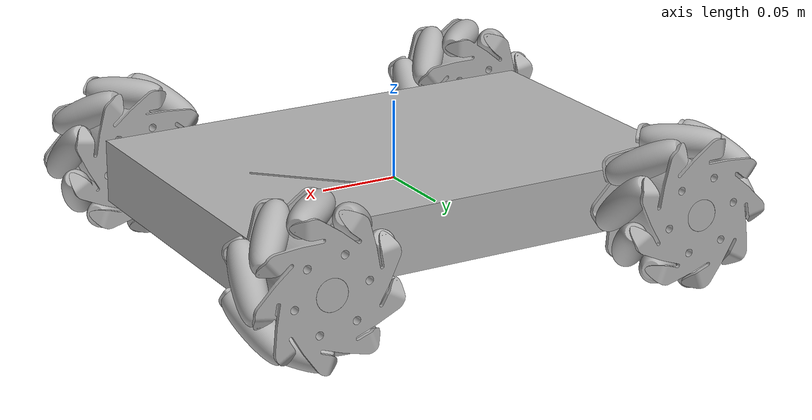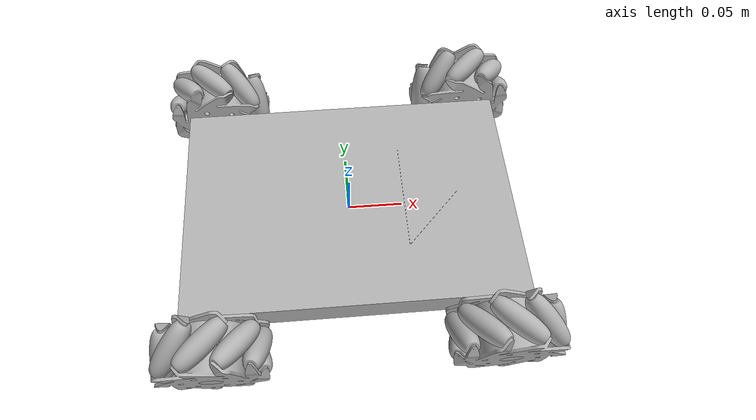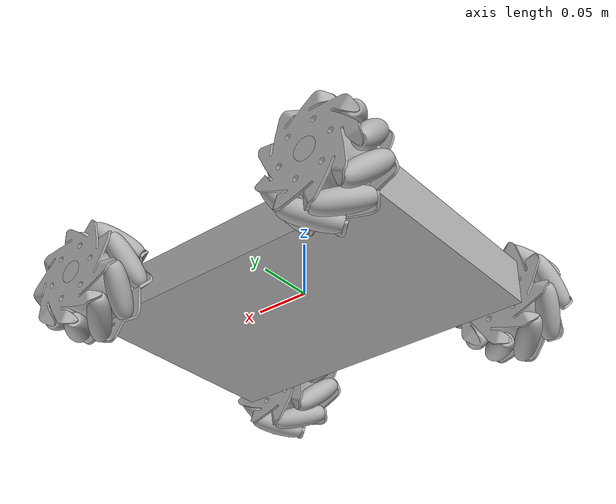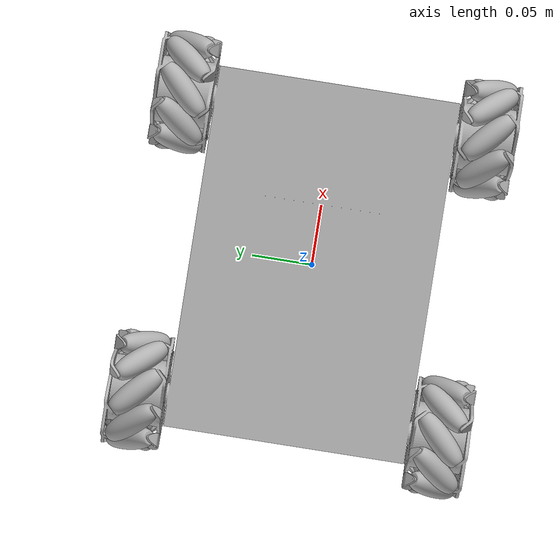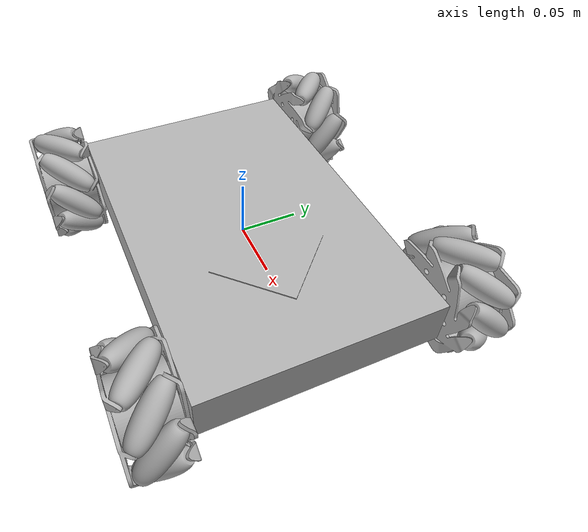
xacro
<?xml version="1.0" ?>
<robot name="mec_rob" xmlns:xacro="http://www.ros.org/wiki/xacro">

<xacro:include filename="$(find mecanum_in_gazebo)/urdf/materials.xacro" />
<xacro:include filename="$(find mecanum_in_gazebo)/urdf/mec_rob.trans" />
<xacro:include filename="$(find mecanum_in_gazebo)/urdf/mec_rob.gazebo" />
<link name="base_link">
  <inertial>
    <origin xyz="6.760415092149816e-05 -2.9513096198865094e-17 2.0788276408363705e-05" rpy="0 0 0"/>
    <mass value="19.3528550466136"/>
    <inertia ixx="0.07315" iyy="0.151641" izz="0.219727" ixy="-0.0" iyz="0.0" ixz="-2.7e-05"/>
  </inertial>
  <visual>
    <origin xyz="0 0 0" rpy="0 0 0"/>
    <geometry>
      <mesh filename="package://mecanum_in_gazebo/meshes/base_link.stl" scale="0.001 0.001 0.001"/>
    </geometry>
    <material name="silver"/>
  </visual>
  <collision>
    <origin xyz="0 0 0" rpy="0 0 0"/>
    <geometry>
      <mesh filename="package://mecanum_in_gazebo/meshes/base_link.stl" scale="0.001 0.001 0.001"/>
    </geometry>
  </collision>
</link>

<link name="wheel_frame_FL_1">
  <inertial>
    <origin xyz="-2.1897287448918723e-05 -0.023738528231967565 3.1378817485983033e-06" rpy="0 0 0"/>
    <mass value="0.30282113324994747"/>
    <inertia ixx="0.00016" iyy="0.000181" izz="0.000158" ixy="-1e-06" iyz="0.0" ixz="-0.0"/>
  </inertial>
  <visual>
    <origin xyz="-0.125 -0.15 -0.0" rpy="0 0 0"/>
    <geometry>
      <mesh filename="package://mecanum_in_gazebo/meshes/wheel_frame_FL_1.stl" scale="0.001 0.001 0.001"/>
    </geometry>
    <material name="silver"/>
  </visual>
  <collision>
    <origin xyz="-0.125 -0.15 -0.0" rpy="0 0 0"/>
    <geometry>
      <mesh filename="package://mecanum_in_gazebo/meshes/wheel_frame_FL_1.stl" scale="0.001 0.001 0.001"/>
    </geometry>
  </collision>
</link>

<link name="roller_14_1">
  <inertial>
    <origin xyz="-0.01730009422242043 -0.01664777121912278 -2.6367796834847468e-15" rpy="0 0 0"/>
    <mass value="0.014233736590697255"/>
    <inertia ixx="2e-06" iyy="2e-06" izz="2e-06" ixy="-1e-06" iyz="-0.0" ixz="-0.0"/>
  </inertial>
  <visual>
    <origin xyz="-0.142316 -0.142881 -0.04" rpy="0 0 0"/>
    <geometry>
      <mesh filename="package://mecanum_in_gazebo/meshes/roller_14_1.stl" scale="0.001 0.001 0.001"/>
    </geometry>
    <material name="silver"/>
  </visual>
  <collision>
    <origin xyz="-0.142316 -0.142881 -0.04" rpy="0 0 0"/>
    <geometry>
      <mesh filename="package://mecanum_in_gazebo/meshes/roller_14_1.stl" scale="0.001 0.001 0.001"/>
    </geometry>
  </collision>
</link>

<link name="roller_16_1">
  <inertial>
    <origin xyz="-0.01325231160541368 -0.01664777187914801 0.011119554128877593" rpy="0 0 0"/>
    <mass value="0.01423373659069693"/>
    <inertia ixx="2e-06" iyy="2e-06" izz="2e-06" ixy="-1e-06" iyz="1e-06" ixz="0.0"/>
  </inertial>
  <visual>
    <origin xyz="-0.163976 -0.142881 -0.019512" rpy="0 0 0"/>
    <geometry>
      <mesh filename="package://mecanum_in_gazebo/meshes/roller_16_1.stl" scale="0.001 0.001 0.001"/>
    </geometry>
    <material name="silver"/>
  </visual>
  <collision>
    <origin xyz="-0.163976 -0.142881 -0.019512" rpy="0 0 0"/>
    <geometry>
      <mesh filename="package://mecanum_in_gazebo/meshes/roller_16_1.stl" scale="0.001 0.001 0.001"/>
    </geometry>
  </collision>
</link>

<link name="roller_13_1">
  <inertial>
    <origin xyz="-0.0030044941161637972 -0.016647462795977563 0.01703683072301009" rpy="0 0 0"/>
    <mass value="0.014233736590696914"/>
    <inertia ixx="2e-06" iyy="2e-06" izz="2e-06" ixy="-0.0" iyz="1e-06" ixz="0.0"/>
  </inertial>
  <visual>
    <origin xyz="-0.167394 -0.142914 0.010075" rpy="0 0 0"/>
    <geometry>
      <mesh filename="package://mecanum_in_gazebo/meshes/roller_13_1.stl" scale="0.001 0.001 0.001"/>
    </geometry>
    <material name="silver"/>
  </visual>
  <collision>
    <origin xyz="-0.167394 -0.142914 0.010075" rpy="0 0 0"/>
    <geometry>
      <mesh filename="package://mecanum_in_gazebo/meshes/roller_13_1.stl" scale="0.001 0.001 0.001"/>
    </geometry>
  </collision>
</link>

<link name="roller_12_1">
  <inertial>
    <origin xyz="0.008650090286065698 -0.016647462135951696 0.01498198481151108" rpy="0 0 0"/>
    <mass value="0.01423373659069688"/>
    <inertia ixx="2e-06" iyy="2e-06" izz="2e-06" ixy="0.0" iyz="1e-06" ixz="-0.0"/>
  </inertial>
  <visual>
    <origin xyz="-0.150999 -0.142914 0.034968" rpy="0 0 0"/>
    <geometry>
      <mesh filename="package://mecanum_in_gazebo/meshes/roller_12_1.stl" scale="0.001 0.001 0.001"/>
    </geometry>
    <material name="silver"/>
  </visual>
  <collision>
    <origin xyz="-0.150999 -0.142914 0.034968" rpy="0 0 0"/>
    <geometry>
      <mesh filename="package://mecanum_in_gazebo/meshes/roller_12_1.stl" scale="0.001 0.001 0.001"/>
    </geometry>
  </collision>
</link>

<link name="roller_15_1">
  <inertial>
    <origin xyz="0.016255980142600823 -0.016647462135952473 0.005916818201972901" rpy="0 0 0"/>
    <mass value="0.014233736590697089"/>
    <inertia ixx="2e-06" iyy="2e-06" izz="2e-06" ixy="1e-06" iyz="0.0" ixz="-0.0"/>
  </inertial>
  <visual>
    <origin xyz="-0.12244 -0.142914 0.043499" rpy="0 0 0"/>
    <geometry>
      <mesh filename="package://mecanum_in_gazebo/meshes/roller_15_1.stl" scale="0.001 0.001 0.001"/>
    </geometry>
    <material name="silver"/>
  </visual>
  <collision>
    <origin xyz="-0.12244 -0.142914 0.043499" rpy="0 0 0"/>
    <geometry>
      <mesh filename="package://mecanum_in_gazebo/meshes/roller_15_1.stl" scale="0.001 0.001 0.001"/>
    </geometry>
  </collision>
</link>

<link name="roller_17_1">
  <inertial>
    <origin xyz="0.01625636867654784 -0.016647462135950142 -0.005917227864846754" rpy="0 0 0"/>
    <mass value="0.014233736590697006"/>
    <inertia ixx="2e-06" iyy="2e-06" izz="2e-06" ixy="1e-06" iyz="-0.0" ixz="0.0"/>
  </inertial>
  <visual>
    <origin xyz="-0.095078 -0.142914 0.031676" rpy="0 0 0"/>
    <geometry>
      <mesh filename="package://mecanum_in_gazebo/meshes/roller_17_1.stl" scale="0.001 0.001 0.001"/>
    </geometry>
    <material name="silver"/>
  </visual>
  <collision>
    <origin xyz="-0.095078 -0.142914 0.031676" rpy="0 0 0"/>
    <geometry>
      <mesh filename="package://mecanum_in_gazebo/meshes/roller_17_1.stl" scale="0.001 0.001 0.001"/>
    </geometry>
  </collision>
</link>

<link name="roller_18_1">
  <inertial>
    <origin xyz="0.008650058329703877 -0.016647462793830475 -0.014981985403539554" rpy="0 0 0"/>
    <mass value="0.01423373659069696"/>
    <inertia ixx="2e-06" iyy="2e-06" izz="2e-06" ixy="0.0" iyz="-1e-06" ixz="0.0"/>
  </inertial>
  <visual>
    <origin xyz="-0.081717 -0.142914 0.005032" rpy="0 0 0"/>
    <geometry>
      <mesh filename="package://mecanum_in_gazebo/meshes/roller_18_1.stl" scale="0.001 0.001 0.001"/>
    </geometry>
    <material name="silver"/>
  </visual>
  <collision>
    <origin xyz="-0.081717 -0.142914 0.005032" rpy="0 0 0"/>
    <geometry>
      <mesh filename="package://mecanum_in_gazebo/meshes/roller_18_1.stl" scale="0.001 0.001 0.001"/>
    </geometry>
  </collision>
</link>

<link name="roller_10_1">
  <inertial>
    <origin xyz="-0.0030041143571402362 -0.016647462795977036 -0.017036976509655844" rpy="0 0 0"/>
    <mass value="0.014233736590696993"/>
    <inertia ixx="2e-06" iyy="2e-06" izz="2e-06" ixy="-0.0" iyz="-1e-06" ixz="-0.0"/>
  </inertial>
  <visual>
    <origin xyz="-0.088609 -0.142914 -0.023967" rpy="0 0 0"/>
    <geometry>
      <mesh filename="package://mecanum_in_gazebo/meshes/roller_10_1.stl" scale="0.001 0.001 0.001"/>
    </geometry>
    <material name="silver"/>
  </visual>
  <collision>
    <origin xyz="-0.088609 -0.142914 -0.023967" rpy="0 0 0"/>
    <geometry>
      <mesh filename="package://mecanum_in_gazebo/meshes/roller_10_1.stl" scale="0.001 0.001 0.001"/>
    </geometry>
  </collision>
</link>

<link name="roller_11_1">
  <inertial>
    <origin xyz="-0.013251875204888214 -0.016647462795978424 -0.011119602623583382" rpy="0 0 0"/>
    <mass value="0.014233736590697477"/>
    <inertia ixx="2e-06" iyy="2e-06" izz="2e-06" ixy="-1e-06" iyz="-1e-06" ixz="-0.0"/>
  </inertial>
  <visual>
    <origin xyz="-0.112528 -0.142914 -0.041751" rpy="0 0 0"/>
    <geometry>
      <mesh filename="package://mecanum_in_gazebo/meshes/roller_11_1.stl" scale="0.001 0.001 0.001"/>
    </geometry>
    <material name="silver"/>
  </visual>
  <collision>
    <origin xyz="-0.112528 -0.142914 -0.041751" rpy="0 0 0"/>
    <geometry>
      <mesh filename="package://mecanum_in_gazebo/meshes/roller_11_1.stl" scale="0.001 0.001 0.001"/>
    </geometry>
  </collision>
</link>

<link name="wheel_frame_FR_1">
  <inertial>
    <origin xyz="-2.1897287449737513e-05 0.02375019110552612 3.1378817487137666e-06" rpy="0 0 0"/>
    <mass value="0.30282113324994836"/>
    <inertia ixx="0.000161" iyy="0.000181" izz="0.000159" ixy="-0.0" iyz="0.0" ixz="-0.0"/>
  </inertial>
  <visual>
    <origin xyz="-0.125 0.15 -0.0" rpy="0 0 0"/>
    <geometry>
      <mesh filename="package://mecanum_in_gazebo/meshes/wheel_frame_FR_1.stl" scale="0.001 0.001 0.001"/>
    </geometry>
    <material name="silver"/>
  </visual>
  <collision>
    <origin xyz="-0.125 0.15 -0.0" rpy="0 0 0"/>
    <geometry>
      <mesh filename="package://mecanum_in_gazebo/meshes/wheel_frame_FR_1.stl" scale="0.001 0.001 0.001"/>
    </geometry>
  </collision>
</link>

<link name="roller_7_1">
  <inertial>
    <origin xyz="0.017300094908289848 -0.01664777187914701 -1.2073675392798577e-15" rpy="0 0 0"/>
    <mass value="0.014233736590697038"/>
    <inertia ixx="2e-06" iyy="2e-06" izz="2e-06" ixy="1e-06" iyz="-0.0" ixz="-0.0"/>
  </inertial>
  <visual>
    <origin xyz="-0.107684 0.109619 -0.04" rpy="0 0 0"/>
    <geometry>
      <mesh filename="package://mecanum_in_gazebo/meshes/roller_7_1.stl" scale="0.001 0.001 0.001"/>
    </geometry>
    <material name="silver"/>
  </visual>
  <collision>
    <origin xyz="-0.107684 0.109619 -0.04" rpy="0 0 0"/>
    <geometry>
      <mesh filename="package://mecanum_in_gazebo/meshes/roller_7_1.stl" scale="0.001 0.001 0.001"/>
    </geometry>
  </collision>
</link>

<link name="roller_5_1">
  <inertial>
    <origin xyz="0.013252319854933331 -0.016647771219124002 -0.011119998238488766" rpy="0 0 0"/>
    <mass value="0.01423373659069685"/>
    <inertia ixx="2e-06" iyy="2e-06" izz="2e-06" ixy="1e-06" iyz="-1e-06" ixz="0.0"/>
  </inertial>
  <visual>
    <origin xyz="-0.137447 0.109619 -0.041772" rpy="0 0 0"/>
    <geometry>
      <mesh filename="package://mecanum_in_gazebo/meshes/roller_5_1.stl" scale="0.001 0.001 0.001"/>
    </geometry>
    <material name="silver"/>
  </visual>
  <collision>
    <origin xyz="-0.137447 0.109619 -0.041772" rpy="0 0 0"/>
    <geometry>
      <mesh filename="package://mecanum_in_gazebo/meshes/roller_5_1.stl" scale="0.001 0.001 0.001"/>
    </geometry>
  </collision>
</link>

<link name="roller_3_1">
  <inertial>
    <origin xyz="0.00300454811119516 -0.01664777121912328 -0.017036408760246494" rpy="0 0 0"/>
    <mass value="0.014233736590696551"/>
    <inertia ixx="2e-06" iyy="2e-06" izz="2e-06" ixy="0.0" iyz="-1e-06" ixz="0.0"/>
  </inertial>
  <visual>
    <origin xyz="-0.161385 0.109619 -0.023998" rpy="0 0 0"/>
    <geometry>
      <mesh filename="package://mecanum_in_gazebo/meshes/roller_3_1.stl" scale="0.001 0.001 0.001"/>
    </geometry>
    <material name="silver"/>
  </visual>
  <collision>
    <origin xyz="-0.161385 0.109619 -0.023998" rpy="0 0 0"/>
    <geometry>
      <mesh filename="package://mecanum_in_gazebo/meshes/roller_3_1.stl" scale="0.001 0.001 0.001"/>
    </geometry>
  </collision>
</link>

<link name="roller_6_1">
  <inertial>
    <origin xyz="-0.008650030959834937 -0.016647771219122087 -0.0149822251925512" rpy="0 0 0"/>
    <mass value="0.014233736590697"/>
    <inertia ixx="2e-06" iyy="2e-06" izz="2e-06" ixy="-0.0" iyz="-1e-06" ixz="-0.0"/>
  </inertial>
  <visual>
    <origin xyz="-0.168299 0.109619 0.005004" rpy="0 0 0"/>
    <geometry>
      <mesh filename="package://mecanum_in_gazebo/meshes/roller_6_1.stl" scale="0.001 0.001 0.001"/>
    </geometry>
    <material name="silver"/>
  </visual>
  <collision>
    <origin xyz="-0.168299 0.109619 0.005004" rpy="0 0 0"/>
    <geometry>
      <mesh filename="package://mecanum_in_gazebo/meshes/roller_6_1.stl" scale="0.001 0.001 0.001"/>
    </geometry>
  </collision>
</link>

<link name="roller_8_1">
  <inertial>
    <origin xyz="-0.01625624772515452 -0.016647771219123614 -0.005917264735106481" rpy="0 0 0"/>
    <mass value="0.01423373659069701"/>
    <inertia ixx="2e-06" iyy="2e-06" izz="2e-06" ixy="-1e-06" iyz="-0.0" ixz="-0.0"/>
  </inertial>
  <visual>
    <origin xyz="-0.154952 0.109619 0.031665" rpy="0 0 0"/>
    <geometry>
      <mesh filename="package://mecanum_in_gazebo/meshes/roller_8_1.stl" scale="0.001 0.001 0.001"/>
    </geometry>
    <material name="silver"/>
  </visual>
  <collision>
    <origin xyz="-0.154952 0.109619 0.031665" rpy="0 0 0"/>
    <geometry>
      <mesh filename="package://mecanum_in_gazebo/meshes/roller_8_1.stl" scale="0.001 0.001 0.001"/>
    </geometry>
  </collision>
</link>

<link name="roller_9_1">
  <inertial>
    <origin xyz="-0.01625685983158369 -0.01664777188086597 0.005916855307413364" rpy="0 0 0"/>
    <mass value="0.014233736590696988"/>
    <inertia ixx="2e-06" iyy="2e-06" izz="2e-06" ixy="-1e-06" iyz="0.0" ixz="0.0"/>
  </inertial>
  <visual>
    <origin xyz="-0.127591 0.109619 0.04351" rpy="0 0 0"/>
    <geometry>
      <mesh filename="package://mecanum_in_gazebo/meshes/roller_9_1.stl" scale="0.001 0.001 0.001"/>
    </geometry>
    <material name="silver"/>
  </visual>
  <collision>
    <origin xyz="-0.127591 0.109619 0.04351" rpy="0 0 0"/>
    <geometry>
      <mesh filename="package://mecanum_in_gazebo/meshes/roller_9_1.stl" scale="0.001 0.001 0.001"/>
    </geometry>
  </collision>
</link>

<link name="roller_4_1">
  <inertial>
    <origin xyz="-0.008650063605525643 -0.016647771879150397 0.014982225786529486" rpy="0 0 0"/>
    <mass value="0.01423373659069714"/>
    <inertia ixx="2e-06" iyy="2e-06" izz="2e-06" ixy="-0.0" iyz="1e-06" ixz="0.0"/>
  </inertial>
  <visual>
    <origin xyz="-0.099017 0.109619 0.034996" rpy="0 0 0"/>
    <geometry>
      <mesh filename="package://mecanum_in_gazebo/meshes/roller_4_1.stl" scale="0.001 0.001 0.001"/>
    </geometry>
    <material name="silver"/>
  </visual>
  <collision>
    <origin xyz="-0.099017 0.109619 0.034996" rpy="0 0 0"/>
    <geometry>
      <mesh filename="package://mecanum_in_gazebo/meshes/roller_4_1.stl" scale="0.001 0.001 0.001"/>
    </geometry>
  </collision>
</link>

<link name="roller_1_1">
  <inertial>
    <origin xyz="0.003003927989318908 -0.01664777187914948 0.017037263649050942" rpy="0 0 0"/>
    <mass value="0.014233736590697087"/>
    <inertia ixx="2e-06" iyy="2e-06" izz="2e-06" ixy="0.0" iyz="1e-06" ixz="-0.0"/>
  </inertial>
  <visual>
    <origin xyz="-0.082601 0.109619 0.010107" rpy="0 0 0"/>
    <geometry>
      <mesh filename="package://mecanum_in_gazebo/meshes/roller_1_1.stl" scale="0.001 0.001 0.001"/>
    </geometry>
    <material name="silver"/>
  </visual>
  <collision>
    <origin xyz="-0.082601 0.109619 0.010107" rpy="0 0 0"/>
    <geometry>
      <mesh filename="package://mecanum_in_gazebo/meshes/roller_1_1.stl" scale="0.001 0.001 0.001"/>
    </geometry>
  </collision>
</link>

<link name="roller_2_1">
  <inertial>
    <origin xyz="0.013252311605417427 -0.016647771879147594 0.011119554128875348" rpy="0 0 0"/>
    <mass value="0.014233736590697151"/>
    <inertia ixx="2e-06" iyy="2e-06" izz="2e-06" ixy="1e-06" iyz="1e-06" ixz="-0.0"/>
  </inertial>
  <visual>
    <origin xyz="-0.086024 0.109619 -0.019512" rpy="0 0 0"/>
    <geometry>
      <mesh filename="package://mecanum_in_gazebo/meshes/roller_2_1.stl" scale="0.001 0.001 0.001"/>
    </geometry>
    <material name="silver"/>
  </visual>
  <collision>
    <origin xyz="-0.086024 0.109619 -0.019512" rpy="0 0 0"/>
    <geometry>
      <mesh filename="package://mecanum_in_gazebo/meshes/roller_2_1.stl" scale="0.001 0.001 0.001"/>
    </geometry>
  </collision>
</link>

<link name="wheel_frame_BL_1">
  <inertial>
    <origin xyz="3.1733464467276207e-10 -0.023749808894473867 -7.519251293838056e-14" rpy="0 0 0"/>
    <mass value="0.30282113324994536"/>
    <inertia ixx="0.000161" iyy="0.000183" izz="0.000161" ixy="-0.0" iyz="-0.0" ixz="-0.0"/>
  </inertial>
  <visual>
    <origin xyz="0.125 -0.15 -0.0" rpy="0 0 0"/>
    <geometry>
      <mesh filename="package://mecanum_in_gazebo/meshes/wheel_frame_BL_1.stl" scale="0.001 0.001 0.001"/>
    </geometry>
    <material name="silver"/>
  </visual>
  <collision>
    <origin xyz="0.125 -0.15 -0.0" rpy="0 0 0"/>
    <geometry>
      <mesh filename="package://mecanum_in_gazebo/meshes/wheel_frame_BL_1.stl" scale="0.001 0.001 0.001"/>
    </geometry>
  </collision>
</link>

<link name="roller_23_1">
  <inertial>
    <origin xyz="0.017300094222420792 -0.016647771219122837 2.5049406993105094e-15" rpy="0 0 0"/>
    <mass value="0.014233736590696983"/>
    <inertia ixx="2e-06" iyy="2e-06" izz="2e-06" ixy="1e-06" iyz="-0.0" ixz="0.0"/>
  </inertial>
  <visual>
    <origin xyz="0.142316 -0.142881 -0.04" rpy="0 0 0"/>
    <geometry>
      <mesh filename="package://mecanum_in_gazebo/meshes/roller_23_1.stl" scale="0.001 0.001 0.001"/>
    </geometry>
    <material name="silver"/>
  </visual>
  <collision>
    <origin xyz="0.142316 -0.142881 -0.04" rpy="0 0 0"/>
    <geometry>
      <mesh filename="package://mecanum_in_gazebo/meshes/roller_23_1.stl" scale="0.001 0.001 0.001"/>
    </geometry>
  </collision>
</link>

<link name="roller_22_1">
  <inertial>
    <origin xyz="0.013252320380338786 -0.016647771879150813 -0.011119998679360706" rpy="0 0 0"/>
    <mass value="0.014233736590697042"/>
    <inertia ixx="2e-06" iyy="2e-06" izz="2e-06" ixy="1e-06" iyz="-1e-06" ixz="0.0"/>
  </inertial>
  <visual>
    <origin xyz="0.112553 -0.142881 -0.041772" rpy="0 0 0"/>
    <geometry>
      <mesh filename="package://mecanum_in_gazebo/meshes/roller_22_1.stl" scale="0.001 0.001 0.001"/>
    </geometry>
    <material name="silver"/>
  </visual>
  <collision>
    <origin xyz="0.112553 -0.142881 -0.041772" rpy="0 0 0"/>
    <geometry>
      <mesh filename="package://mecanum_in_gazebo/meshes/roller_22_1.stl" scale="0.001 0.001 0.001"/>
    </geometry>
  </collision>
</link>

<link name="roller_25_1">
  <inertial>
    <origin xyz="0.003004548230298998 -0.016647771879146955 -0.01703640943569361" rpy="0 0 0"/>
    <mass value="0.014233736590697047"/>
    <inertia ixx="2e-06" iyy="2e-06" izz="2e-06" ixy="0.0" iyz="-1e-06" ixz="0.0"/>
  </inertial>
  <visual>
    <origin xyz="0.088615 -0.142881 -0.023998" rpy="0 0 0"/>
    <geometry>
      <mesh filename="package://mecanum_in_gazebo/meshes/roller_25_1.stl" scale="0.001 0.001 0.001"/>
    </geometry>
    <material name="silver"/>
  </visual>
  <collision>
    <origin xyz="0.088615 -0.142881 -0.023998" rpy="0 0 0"/>
    <geometry>
      <mesh filename="package://mecanum_in_gazebo/meshes/roller_25_1.stl" scale="0.001 0.001 0.001"/>
    </geometry>
  </collision>
</link>

<link name="roller_21_1">
  <inertial>
    <origin xyz="-0.008650030959835658 -0.016647771219122615 -0.014982225192550146" rpy="0 0 0"/>
    <mass value="0.014233736590696936"/>
    <inertia ixx="2e-06" iyy="2e-06" izz="2e-06" ixy="-0.0" iyz="-1e-06" ixz="-0.0"/>
  </inertial>
  <visual>
    <origin xyz="0.081701 -0.142881 0.005004" rpy="0 0 0"/>
    <geometry>
      <mesh filename="package://mecanum_in_gazebo/meshes/roller_21_1.stl" scale="0.001 0.001 0.001"/>
    </geometry>
    <material name="silver"/>
  </visual>
  <collision>
    <origin xyz="0.081701 -0.142881 0.005004" rpy="0 0 0"/>
    <geometry>
      <mesh filename="package://mecanum_in_gazebo/meshes/roller_21_1.stl" scale="0.001 0.001 0.001"/>
    </geometry>
  </collision>
</link>

<link name="roller_26_1">
  <inertial>
    <origin xyz="-0.016256248369660345 -0.016647771879147844 -0.005917264969692589" rpy="0 0 0"/>
    <mass value="0.014233736590697033"/>
    <inertia ixx="2e-06" iyy="2e-06" izz="2e-06" ixy="-1e-06" iyz="-0.0" ixz="-0.0"/>
  </inertial>
  <visual>
    <origin xyz="0.095048 -0.142881 0.031665" rpy="0 0 0"/>
    <geometry>
      <mesh filename="package://mecanum_in_gazebo/meshes/roller_26_1.stl" scale="0.001 0.001 0.001"/>
    </geometry>
    <material name="silver"/>
  </visual>
  <collision>
    <origin xyz="0.095048 -0.142881 0.031665" rpy="0 0 0"/>
    <geometry>
      <mesh filename="package://mecanum_in_gazebo/meshes/roller_26_1.stl" scale="0.001 0.001 0.001"/>
    </geometry>
  </collision>
</link>

<link name="roller_27_1">
  <inertial>
    <origin xyz="-0.01625685918905319 -0.016647771222854157 0.005916855073576734" rpy="0 0 0"/>
    <mass value="0.014233736590697002"/>
    <inertia ixx="2e-06" iyy="2e-06" izz="2e-06" ixy="-1e-06" iyz="0.0" ixz="0.0"/>
  </inertial>
  <visual>
    <origin xyz="0.122409 -0.142881 0.04351" rpy="0 0 0"/>
    <geometry>
      <mesh filename="package://mecanum_in_gazebo/meshes/roller_27_1.stl" scale="0.001 0.001 0.001"/>
    </geometry>
    <material name="silver"/>
  </visual>
  <collision>
    <origin xyz="0.122409 -0.142881 0.04351" rpy="0 0 0"/>
    <geometry>
      <mesh filename="package://mecanum_in_gazebo/meshes/roller_27_1.stl" scale="0.001 0.001 0.001"/>
    </geometry>
  </collision>
</link>

<link name="roller_20_1">
  <inertial>
    <origin xyz="-0.008650063605519703 -0.016647771879149093 0.01498222578652882" rpy="0 0 0"/>
    <mass value="0.014233736590696985"/>
    <inertia ixx="2e-06" iyy="2e-06" izz="2e-06" ixy="-0.0" iyz="1e-06" ixz="0.0"/>
  </inertial>
  <visual>
    <origin xyz="0.150983 -0.142881 0.034996" rpy="0 0 0"/>
    <geometry>
      <mesh filename="package://mecanum_in_gazebo/meshes/roller_20_1.stl" scale="0.001 0.001 0.001"/>
    </geometry>
    <material name="silver"/>
  </visual>
  <collision>
    <origin xyz="0.150983 -0.142881 0.034996" rpy="0 0 0"/>
    <geometry>
      <mesh filename="package://mecanum_in_gazebo/meshes/roller_20_1.stl" scale="0.001 0.001 0.001"/>
    </geometry>
  </collision>
</link>

<link name="roller_19_1">
  <inertial>
    <origin xyz="0.0030039278702186645 -0.01664777121912278 0.017037262973597655" rpy="0 0 0"/>
    <mass value="0.014233736590697066"/>
    <inertia ixx="2e-06" iyy="2e-06" izz="2e-06" ixy="0.0" iyz="1e-06" ixz="-0.0"/>
  </inertial>
  <visual>
    <origin xyz="0.167399 -0.142881 0.010107" rpy="0 0 0"/>
    <geometry>
      <mesh filename="package://mecanum_in_gazebo/meshes/roller_19_1.stl" scale="0.001 0.001 0.001"/>
    </geometry>
    <material name="silver"/>
  </visual>
  <collision>
    <origin xyz="0.167399 -0.142881 0.010107" rpy="0 0 0"/>
    <geometry>
      <mesh filename="package://mecanum_in_gazebo/meshes/roller_19_1.stl" scale="0.001 0.001 0.001"/>
    </geometry>
  </collision>
</link>

<link name="roller_24_1">
  <inertial>
    <origin xyz="0.0132523116054169 -0.016647771879146317 0.011119554128877464" rpy="0 0 0"/>
    <mass value="0.014233736590697"/>
    <inertia ixx="2e-06" iyy="2e-06" izz="2e-06" ixy="1e-06" iyz="1e-06" ixz="-0.0"/>
  </inertial>
  <visual>
    <origin xyz="0.163976 -0.142881 -0.019512" rpy="0 0 0"/>
    <geometry>
      <mesh filename="package://mecanum_in_gazebo/meshes/roller_24_1.stl" scale="0.001 0.001 0.001"/>
    </geometry>
    <material name="silver"/>
  </visual>
  <collision>
    <origin xyz="0.163976 -0.142881 -0.019512" rpy="0 0 0"/>
    <geometry>
      <mesh filename="package://mecanum_in_gazebo/meshes/roller_24_1.stl" scale="0.001 0.001 0.001"/>
    </geometry>
  </collision>
</link>

<link name="wheel_frame_BR_1">
  <inertial>
    <origin xyz="3.1733479732842795e-10 0.023761471768032644 -7.514689871510898e-14" rpy="0 0 0"/>
    <mass value="0.30282113324994864"/>
    <inertia ixx="0.00016" iyy="0.000183" izz="0.00016" ixy="0.0" iyz="0.0" ixz="-0.0"/>
  </inertial>
  <visual>
    <origin xyz="0.125 0.15 -0.0" rpy="0 0 0"/>
    <geometry>
      <mesh filename="package://mecanum_in_gazebo/meshes/wheel_frame_BR_1.stl" scale="0.001 0.001 0.001"/>
    </geometry>
    <material name="silver"/>
  </visual>
  <collision>
    <origin xyz="0.125 0.15 -0.0" rpy="0 0 0"/>
    <geometry>
      <mesh filename="package://mecanum_in_gazebo/meshes/wheel_frame_BR_1.stl" scale="0.001 0.001 0.001"/>
    </geometry>
  </collision>
</link>

<link name="roller_34_1">
  <inertial>
    <origin xyz="-0.01730009422242071 -0.016647771219125196 -1.0685896612017132e-15" rpy="0 0 0"/>
    <mass value="0.014233736590696927"/>
    <inertia ixx="2e-06" iyy="2e-06" izz="2e-06" ixy="-1e-06" iyz="0.0" ixz="-0.0"/>
  </inertial>
  <visual>
    <origin xyz="0.107684 0.109619 -0.04" rpy="0 0 0"/>
    <geometry>
      <mesh filename="package://mecanum_in_gazebo/meshes/roller_34_1.stl" scale="0.001 0.001 0.001"/>
    </geometry>
    <material name="silver"/>
  </visual>
  <collision>
    <origin xyz="0.107684 0.109619 -0.04" rpy="0 0 0"/>
    <geometry>
      <mesh filename="package://mecanum_in_gazebo/meshes/roller_34_1.stl" scale="0.001 0.001 0.001"/>
    </geometry>
  </collision>
</link>

<link name="roller_30_1">
  <inertial>
    <origin xyz="-0.013252311605417719 -0.016647771879147177 0.011119554128875175" rpy="0 0 0"/>
    <mass value="0.014233736590697087"/>
    <inertia ixx="2e-06" iyy="2e-06" izz="2e-06" ixy="-1e-06" iyz="1e-06" ixz="0.0"/>
  </inertial>
  <visual>
    <origin xyz="0.086024 0.109619 -0.019512" rpy="0 0 0"/>
    <geometry>
      <mesh filename="package://mecanum_in_gazebo/meshes/roller_30_1.stl" scale="0.001 0.001 0.001"/>
    </geometry>
    <material name="silver"/>
  </visual>
  <collision>
    <origin xyz="0.086024 0.109619 -0.019512" rpy="0 0 0"/>
    <geometry>
      <mesh filename="package://mecanum_in_gazebo/meshes/roller_30_1.stl" scale="0.001 0.001 0.001"/>
    </geometry>
  </collision>
</link>

<link name="roller_32_1">
  <inertial>
    <origin xyz="-0.0030039279893207677 -0.01664777187914715 0.017037263649050297" rpy="0 0 0"/>
    <mass value="0.014233736590697054"/>
    <inertia ixx="2e-06" iyy="2e-06" izz="2e-06" ixy="-0.0" iyz="1e-06" ixz="0.0"/>
  </inertial>
  <visual>
    <origin xyz="0.082601 0.109619 0.010107" rpy="0 0 0"/>
    <geometry>
      <mesh filename="package://mecanum_in_gazebo/meshes/roller_32_1.stl" scale="0.001 0.001 0.001"/>
    </geometry>
    <material name="silver"/>
  </visual>
  <collision>
    <origin xyz="0.082601 0.109619 0.010107" rpy="0 0 0"/>
    <geometry>
      <mesh filename="package://mecanum_in_gazebo/meshes/roller_32_1.stl" scale="0.001 0.001 0.001"/>
    </geometry>
  </collision>
</link>

<link name="roller_31_1">
  <inertial>
    <origin xyz="0.008650063262586508 -0.01664777121912009 0.014982225192549992" rpy="0 0 0"/>
    <mass value="0.01423373659069689"/>
    <inertia ixx="2e-06" iyy="2e-06" izz="2e-06" ixy="0.0" iyz="1e-06" ixz="-0.0"/>
  </inertial>
  <visual>
    <origin xyz="0.099017 0.109619 0.034996" rpy="0 0 0"/>
    <geometry>
      <mesh filename="package://mecanum_in_gazebo/meshes/roller_31_1.stl" scale="0.001 0.001 0.001"/>
    </geometry>
    <material name="silver"/>
  </visual>
  <collision>
    <origin xyz="0.099017 0.109619 0.034996" rpy="0 0 0"/>
    <geometry>
      <mesh filename="package://mecanum_in_gazebo/meshes/roller_31_1.stl" scale="0.001 0.001 0.001"/>
    </geometry>
  </collision>
</link>

<link name="roller_29_1">
  <inertial>
    <origin xyz="0.016256859835714538 -0.016647771879146372 0.0059168553068168275" rpy="0 0 0"/>
    <mass value="0.014233736590697115"/>
    <inertia ixx="2e-06" iyy="2e-06" izz="2e-06" ixy="1e-06" iyz="0.0" ixz="-0.0"/>
  </inertial>
  <visual>
    <origin xyz="0.127591 0.109619 0.04351" rpy="0 0 0"/>
    <geometry>
      <mesh filename="package://mecanum_in_gazebo/meshes/roller_29_1.stl" scale="0.001 0.001 0.001"/>
    </geometry>
    <material name="silver"/>
  </visual>
  <collision>
    <origin xyz="0.127591 0.109619 0.04351" rpy="0 0 0"/>
    <geometry>
      <mesh filename="package://mecanum_in_gazebo/meshes/roller_29_1.stl" scale="0.001 0.001 0.001"/>
    </geometry>
  </collision>
</link>

<link name="roller_28_1">
  <inertial>
    <origin xyz="-0.013252320380341881 -0.016647771879148177 -0.011119998679359859" rpy="0 0 0"/>
    <mass value="0.014233736590697"/>
    <inertia ixx="2e-06" iyy="2e-06" izz="2e-06" ixy="-1e-06" iyz="-1e-06" ixz="-0.0"/>
  </inertial>
  <visual>
    <origin xyz="0.137447 0.109619 -0.041772" rpy="0 0 0"/>
    <geometry>
      <mesh filename="package://mecanum_in_gazebo/meshes/roller_28_1.stl" scale="0.001 0.001 0.001"/>
    </geometry>
    <material name="silver"/>
  </visual>
  <collision>
    <origin xyz="0.137447 0.109619 -0.041772" rpy="0 0 0"/>
    <geometry>
      <mesh filename="package://mecanum_in_gazebo/meshes/roller_28_1.stl" scale="0.001 0.001 0.001"/>
    </geometry>
  </collision>
</link>

<link name="roller_35_1">
  <inertial>
    <origin xyz="0.01625624772515405 -0.01664777121912206 -0.005917264735111838" rpy="0 0 0"/>
    <mass value="0.01423373659069706"/>
    <inertia ixx="2e-06" iyy="2e-06" izz="2e-06" ixy="1e-06" iyz="-0.0" ixz="0.0"/>
  </inertial>
  <visual>
    <origin xyz="0.154952 0.109619 0.031665" rpy="0 0 0"/>
    <geometry>
      <mesh filename="package://mecanum_in_gazebo/meshes/roller_35_1.stl" scale="0.001 0.001 0.001"/>
    </geometry>
    <material name="silver"/>
  </visual>
  <collision>
    <origin xyz="0.154952 0.109619 0.031665" rpy="0 0 0"/>
    <geometry>
      <mesh filename="package://mecanum_in_gazebo/meshes/roller_35_1.stl" scale="0.001 0.001 0.001"/>
    </geometry>
  </collision>
</link>

<link name="roller_36_1">
  <inertial>
    <origin xyz="0.00865003096434197 -0.016647771218981755 -0.01498222519244071" rpy="0 0 0"/>
    <mass value="0.014233736590696964"/>
    <inertia ixx="2e-06" iyy="2e-06" izz="2e-06" ixy="0.0" iyz="-1e-06" ixz="0.0"/>
  </inertial>
  <visual>
    <origin xyz="0.168299 0.109619 0.005004" rpy="0 0 0"/>
    <geometry>
      <mesh filename="package://mecanum_in_gazebo/meshes/roller_36_1.stl" scale="0.001 0.001 0.001"/>
    </geometry>
    <material name="silver"/>
  </visual>
  <collision>
    <origin xyz="0.168299 0.109619 0.005004" rpy="0 0 0"/>
    <geometry>
      <mesh filename="package://mecanum_in_gazebo/meshes/roller_36_1.stl" scale="0.001 0.001 0.001"/>
    </geometry>
  </collision>
</link>

<link name="roller_33_1">
  <inertial>
    <origin xyz="-0.003004114238040423 -0.01664746213595243 -0.017036975834204805" rpy="0 0 0"/>
    <mass value="0.01423373659069702"/>
    <inertia ixx="2e-06" iyy="2e-06" izz="2e-06" ixy="-0.0" iyz="-1e-06" ixz="-0.0"/>
  </inertial>
  <visual>
    <origin xyz="0.161391 0.109586 -0.023967" rpy="0 0 0"/>
    <geometry>
      <mesh filename="package://mecanum_in_gazebo/meshes/roller_33_1.stl" scale="0.001 0.001 0.001"/>
    </geometry>
    <material name="silver"/>
  </visual>
  <collision>
    <origin xyz="0.161391 0.109586 -0.023967" rpy="0 0 0"/>
    <geometry>
      <mesh filename="package://mecanum_in_gazebo/meshes/roller_33_1.stl" scale="0.001 0.001 0.001"/>
    </geometry>
  </collision>
</link>

<joint name="front_left_joint" type="continuous">
  <origin xyz="0.125 0.15 0.0" rpy="0 0 0"/>
  <parent link="base_link"/>
  <child link="wheel_frame_FL_1"/>
  <axis xyz="0.0 1.0 0.0"/>
</joint>

<joint name="Revolute_57" type="continuous">
  <origin xyz="0.017316 -0.007119 0.04" rpy="0 0 0"/>
  <parent link="wheel_frame_FL_1"/>
  <child link="roller_14_1"/>
  <axis xyz="0.720551 0.693402 -0.0"/>
</joint>

<joint name="Revolute_58" type="continuous">
  <origin xyz="0.038976 -0.007119 0.019512" rpy="0 0 0"/>
  <parent link="wheel_frame_FL_1"/>
  <child link="roller_16_1"/>
  <axis xyz="0.551974 0.693402 -0.463161"/>
</joint>

<joint name="Revolute_59" type="continuous">
  <origin xyz="0.042394 -0.007086 -0.010075" rpy="0 0 0"/>
  <parent link="wheel_frame_FL_1"/>
  <child link="roller_13_1"/>
  <axis xyz="-0.125122 -0.693402 0.709604"/>
</joint>

<joint name="Revolute_60" type="continuous">
  <origin xyz="0.025999 -0.007086 -0.034968" rpy="0 0 0"/>
  <parent link="wheel_frame_FL_1"/>
  <child link="roller_12_1"/>
  <axis xyz="0.360276 -0.693402 0.624016"/>
</joint>

<joint name="Revolute_61" type="continuous">
  <origin xyz="-0.00256 -0.007086 -0.043499" rpy="0 0 0"/>
  <parent link="wheel_frame_FL_1"/>
  <child link="roller_15_1"/>
  <axis xyz="0.677097 -0.693402 0.246443"/>
</joint>

<joint name="Revolute_62" type="continuous">
  <origin xyz="-0.029922 -0.007086 -0.031676" rpy="0 0 0"/>
  <parent link="wheel_frame_FL_1"/>
  <child link="roller_17_1"/>
  <axis xyz="0.677097 -0.693402 -0.246443"/>
</joint>

<joint name="Revolute_63" type="continuous">
  <origin xyz="-0.043283 -0.007086 -0.005032" rpy="0 0 0"/>
  <parent link="wheel_frame_FL_1"/>
  <child link="roller_18_1"/>
  <axis xyz="0.360276 -0.693402 -0.624016"/>
</joint>

<joint name="Revolute_64" type="continuous">
  <origin xyz="-0.036391 -0.007086 0.023967" rpy="0 0 0"/>
  <parent link="wheel_frame_FL_1"/>
  <child link="roller_10_1"/>
  <axis xyz="-0.125122 -0.693402 -0.709604"/>
</joint>

<joint name="Revolute_65" type="continuous">
  <origin xyz="-0.012472 -0.007086 0.041751" rpy="0 0 0"/>
  <parent link="wheel_frame_FL_1"/>
  <child link="roller_11_1"/>
  <axis xyz="-0.551974 -0.693402 -0.463161"/>
</joint>

<joint name="front_right_joint" type="continuous">
  <origin xyz="0.125 -0.15 0.0" rpy="0 0 0"/>
  <parent link="base_link"/>
  <child link="wheel_frame_FR_1"/>
  <axis xyz="0.0 1.0 0.0"/>
</joint>

<joint name="Revolute_67" type="continuous">
  <origin xyz="-0.017316 0.040381 0.04" rpy="0 0 0"/>
  <parent link="wheel_frame_FR_1"/>
  <child link="roller_7_1"/>
  <axis xyz="0.720551 -0.693402 -0.0"/>
</joint>

<joint name="Revolute_68" type="continuous">
  <origin xyz="0.012447 0.040381 0.041772" rpy="0 0 0"/>
  <parent link="wheel_frame_FR_1"/>
  <child link="roller_5_1"/>
  <axis xyz="0.551974 -0.693402 -0.463161"/>
</joint>

<joint name="Revolute_69" type="continuous">
  <origin xyz="0.036385 0.040381 0.023998" rpy="0 0 0"/>
  <parent link="wheel_frame_FR_1"/>
  <child link="roller_3_1"/>
  <axis xyz="0.125122 -0.693402 -0.709604"/>
</joint>

<joint name="Revolute_70" type="continuous">
  <origin xyz="0.043299 0.040381 -0.005004" rpy="0 0 0"/>
  <parent link="wheel_frame_FR_1"/>
  <child link="roller_6_1"/>
  <axis xyz="-0.360276 -0.693402 -0.624016"/>
</joint>

<joint name="Revolute_71" type="continuous">
  <origin xyz="0.029952 0.040381 -0.031665" rpy="0 0 0"/>
  <parent link="wheel_frame_FR_1"/>
  <child link="roller_8_1"/>
  <axis xyz="-0.677097 -0.693402 -0.246443"/>
</joint>

<joint name="Revolute_72" type="continuous">
  <origin xyz="0.002591 0.040381 -0.04351" rpy="0 0 0"/>
  <parent link="wheel_frame_FR_1"/>
  <child link="roller_9_1"/>
  <axis xyz="-0.677097 -0.693402 0.246443"/>
</joint>

<joint name="Revolute_73" type="continuous">
  <origin xyz="-0.025983 0.040381 -0.034996" rpy="0 0 0"/>
  <parent link="wheel_frame_FR_1"/>
  <child link="roller_4_1"/>
  <axis xyz="-0.360276 -0.693402 0.624016"/>
</joint>

<joint name="Revolute_74" type="continuous">
  <origin xyz="-0.042399 0.040381 -0.010107" rpy="0 0 0"/>
  <parent link="wheel_frame_FR_1"/>
  <child link="roller_1_1"/>
  <axis xyz="0.125122 -0.693402 0.709604"/>
</joint>

<joint name="Revolute_75" type="continuous">
  <origin xyz="-0.038976 0.040381 0.019512" rpy="0 0 0"/>
  <parent link="wheel_frame_FR_1"/>
  <child link="roller_2_1"/>
  <axis xyz="0.551974 -0.693402 0.463161"/>
</joint>

<joint name="back_left_joint" type="continuous">
  <origin xyz="-0.125 0.15 0.0" rpy="0 0 0"/>
  <parent link="base_link"/>
  <child link="wheel_frame_BL_1"/>
  <axis xyz="0.0 1.0 0.0"/>
</joint>

<joint name="Revolute_77" type="continuous">
  <origin xyz="-0.017316 -0.007119 0.04" rpy="0 0 0"/>
  <parent link="wheel_frame_BL_1"/>
  <child link="roller_23_1"/>
  <axis xyz="0.720551 -0.693402 -0.0"/>
</joint>

<joint name="Revolute_78" type="continuous">
  <origin xyz="0.012447 -0.007119 0.041772" rpy="0 0 0"/>
  <parent link="wheel_frame_BL_1"/>
  <child link="roller_22_1"/>
  <axis xyz="0.551974 -0.693402 -0.463161"/>
</joint>

<joint name="Revolute_79" type="continuous">
  <origin xyz="0.036385 -0.007119 0.023998" rpy="0 0 0"/>
  <parent link="wheel_frame_BL_1"/>
  <child link="roller_25_1"/>
  <axis xyz="0.125122 -0.693402 -0.709604"/>
</joint>

<joint name="Revolute_80" type="continuous">
  <origin xyz="0.043299 -0.007119 -0.005004" rpy="0 0 0"/>
  <parent link="wheel_frame_BL_1"/>
  <child link="roller_21_1"/>
  <axis xyz="-0.360276 -0.693402 -0.624016"/>
</joint>

<joint name="Revolute_81" type="continuous">
  <origin xyz="0.029952 -0.007119 -0.031665" rpy="0 0 0"/>
  <parent link="wheel_frame_BL_1"/>
  <child link="roller_26_1"/>
  <axis xyz="-0.677097 -0.693402 -0.246443"/>
</joint>

<joint name="Revolute_82" type="continuous">
  <origin xyz="0.002591 -0.007119 -0.04351" rpy="0 0 0"/>
  <parent link="wheel_frame_BL_1"/>
  <child link="roller_27_1"/>
  <axis xyz="-0.677097 -0.693402 0.246443"/>
</joint>

<joint name="Revolute_83" type="continuous">
  <origin xyz="-0.025983 -0.007119 -0.034996" rpy="0 0 0"/>
  <parent link="wheel_frame_BL_1"/>
  <child link="roller_20_1"/>
  <axis xyz="-0.360276 -0.693402 0.624016"/>
</joint>

<joint name="Revolute_84" type="continuous">
  <origin xyz="-0.042399 -0.007119 -0.010107" rpy="0 0 0"/>
  <parent link="wheel_frame_BL_1"/>
  <child link="roller_19_1"/>
  <axis xyz="0.125122 -0.693402 0.709604"/>
</joint>

<joint name="Revolute_85" type="continuous">
  <origin xyz="-0.038976 -0.007119 0.019512" rpy="0 0 0"/>
  <parent link="wheel_frame_BL_1"/>
  <child link="roller_24_1"/>
  <axis xyz="0.551974 -0.693402 0.463161"/>
</joint>

<joint name="back_right_joint" type="continuous">
  <origin xyz="-0.125 -0.15 0.0" rpy="0 0 0"/>
  <parent link="base_link"/>
  <child link="wheel_frame_BR_1"/>
  <axis xyz="0.0 1.0 0.0"/>
</joint>

<joint name="Revolute_87" type="continuous">
  <origin xyz="0.017316 0.040381 0.04" rpy="0 0 0"/>
  <parent link="wheel_frame_BR_1"/>
  <child link="roller_34_1"/>
  <axis xyz="0.720551 0.693402 -0.0"/>
</joint>

<joint name="Revolute_88" type="continuous">
  <origin xyz="0.038976 0.040381 0.019512" rpy="0 0 0"/>
  <parent link="wheel_frame_BR_1"/>
  <child link="roller_30_1"/>
  <axis xyz="0.551974 0.693402 -0.463161"/>
</joint>

<joint name="Revolute_89" type="continuous">
  <origin xyz="0.042399 0.040381 -0.010107" rpy="0 0 0"/>
  <parent link="wheel_frame_BR_1"/>
  <child link="roller_32_1"/>
  <axis xyz="0.125122 0.693402 -0.709604"/>
</joint>

<joint name="Revolute_90" type="continuous">
  <origin xyz="0.025983 0.040381 -0.034996" rpy="0 0 0"/>
  <parent link="wheel_frame_BR_1"/>
  <child link="roller_31_1"/>
  <axis xyz="-0.360276 0.693402 -0.624016"/>
</joint>

<joint name="Revolute_91" type="continuous">
  <origin xyz="-0.002591 0.040381 -0.04351" rpy="0 0 0"/>
  <parent link="wheel_frame_BR_1"/>
  <child link="roller_29_1"/>
  <axis xyz="-0.677097 0.693402 -0.246443"/>
</joint>

<joint name="Revolute_92" type="continuous">
  <origin xyz="-0.012447 0.040381 0.041772" rpy="0 0 0"/>
  <parent link="wheel_frame_BR_1"/>
  <child link="roller_28_1"/>
  <axis xyz="0.551974 0.693402 0.463161"/>
</joint>

<joint name="Revolute_93" type="continuous">
  <origin xyz="-0.029952 0.040381 -0.031665" rpy="0 0 0"/>
  <parent link="wheel_frame_BR_1"/>
  <child link="roller_35_1"/>
  <axis xyz="-0.677097 0.693402 0.246443"/>
</joint>

<joint name="Revolute_94" type="continuous">
  <origin xyz="-0.043299 0.040381 -0.005004" rpy="0 0 0"/>
  <parent link="wheel_frame_BR_1"/>
  <child link="roller_36_1"/>
  <axis xyz="-0.360276 0.693402 0.624016"/>
</joint>

<joint name="Revolute_95" type="continuous">
  <origin xyz="-0.036391 0.040414 0.023967" rpy="0 0 0"/>
  <parent link="wheel_frame_BR_1"/>
  <child link="roller_33_1"/>
  <axis xyz="-0.125122 -0.693402 -0.709604"/>
</joint>

</robot>

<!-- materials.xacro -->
<robot name="mec_rob" xmlns:xacro="http://www.ros.org/wiki/xacro" >

<material name="silver">
  <color rgba="0.700 0.700 0.700 1.000"/>
</material>

</robot>

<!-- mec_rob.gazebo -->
<robot name="mec_rob" xmlns:xacro="http://www.ros.org/wiki/xacro" >

<xacro:property name="body_color" value="Gazebo/Silver" />
<xacro:property name="roller_color" value="Gazebo/Orange" />
<xacro:property name="wheel_color" value="Gazebo/Grey" />

<gazebo>
  <plugin name="control" filename="libgazebo_ros_control.so"/>
</gazebo>
<gazebo reference="base_link">
  <material>${body_color}</material>
  <mu1>0.2</mu1>
  <mu2>0.2</mu2>
  <selfCollide>true</selfCollide>
  <gravity>true</gravity>
</gazebo>

<gazebo reference="wheel_frame_FL_1">
  <material>${wheel_color}</material>
  <mu1>0.2</mu1>
  <mu2>0.2</mu2>
  <selfCollide>true</selfCollide>
</gazebo>

<gazebo reference="roller_14_1">
  <material>${roller_color}</material>
  <mu1>0.2</mu1>
  <mu2>0.2</mu2>
  <selfCollide>true</selfCollide>
</gazebo>

<gazebo reference="roller_16_1">
  <material>${roller_color}</material>
  <mu1>0.2</mu1>
  <mu2>0.2</mu2>
  <selfCollide>true</selfCollide>
</gazebo>

<gazebo reference="roller_13_1">
  <material>${roller_color}</material>
  <mu1>0.2</mu1>
  <mu2>0.2</mu2>
  <selfCollide>true</selfCollide>
</gazebo>

<gazebo reference="roller_12_1">
  <material>${roller_color}</material>
  <mu1>0.2</mu1>
  <mu2>0.2</mu2>
  <selfCollide>true</selfCollide>
</gazebo>

<gazebo reference="roller_15_1">
  <material>${roller_color}</material>
  <mu1>0.2</mu1>
  <mu2>0.2</mu2>
  <selfCollide>true</selfCollide>
</gazebo>

<gazebo reference="roller_17_1">
  <material>${roller_color}</material>
  <mu1>0.2</mu1>
  <mu2>0.2</mu2>
  <selfCollide>true</selfCollide>
</gazebo>

<gazebo reference="roller_18_1">
  <material>${roller_color}</material>
  <mu1>0.2</mu1>
  <mu2>0.2</mu2>
  <selfCollide>true</selfCollide>
</gazebo>

<gazebo reference="roller_10_1">
  <material>${roller_color}</material>
  <mu1>0.2</mu1>
  <mu2>0.2</mu2>
  <selfCollide>true</selfCollide>
</gazebo>

<gazebo reference="roller_11_1">
  <material>${roller_color}</material>
  <mu1>0.2</mu1>
  <mu2>0.2</mu2>
  <selfCollide>true</selfCollide>
</gazebo>

<gazebo reference="wheel_frame_FR_1">
  <material>${wheel_color}</material>
  <mu1>0.2</mu1>
  <mu2>0.2</mu2>
  <selfCollide>true</selfCollide>
</gazebo>

<gazebo reference="roller_7_1">
  <material>${roller_color}</material>
  <mu1>0.2</mu1>
  <mu2>0.2</mu2>
  <selfCollide>true</selfCollide>
</gazebo>

<gazebo reference="roller_5_1">
  <material>${roller_color}</material>
  <mu1>0.2</mu1>
  <mu2>0.2</mu2>
  <selfCollide>true</selfCollide>
</gazebo>

<gazebo reference="roller_3_1">
  <material>${roller_color}</material>
  <mu1>0.2</mu1>
  <mu2>0.2</mu2>
  <selfCollide>true</selfCollide>
</gazebo>

<gazebo reference="roller_6_1">
  <material>${roller_color}</material>
  <mu1>0.2</mu1>
  <mu2>0.2</mu2>
  <selfCollide>true</selfCollide>
</gazebo>

<gazebo reference="roller_8_1">
  <material>${roller_color}</material>
  <mu1>0.2</mu1>
  <mu2>0.2</mu2>
  <selfCollide>true</selfCollide>
</gazebo>

<gazebo reference="roller_9_1">
  <material>${roller_color}</material>
  <mu1>0.2</mu1>
  <mu2>0.2</mu2>
  <selfCollide>true</selfCollide>
</gazebo>

<gazebo reference="roller_4_1">
  <material>${roller_color}</material>
  <mu1>0.2</mu1>
  <mu2>0.2</mu2>
  <selfCollide>true</selfCollide>
</gazebo>

<gazebo reference="roller_1_1">
  <material>${roller_color}</material>
  <mu1>0.2</mu1>
  <mu2>0.2</mu2>
  <selfCollide>true</selfCollide>
</gazebo>

<gazebo reference="roller_2_1">
  <material>${roller_color}</material>
  <mu1>0.2</mu1>
  <mu2>0.2</mu2>
  <selfCollide>true</selfCollide>
</gazebo>

<gazebo reference="wheel_frame_BL_1">
  <material>${wheel_color}</material>
  <mu1>0.2</mu1>
  <mu2>0.2</mu2>
  <selfCollide>true</selfCollide>
</gazebo>

<gazebo reference="roller_23_1">
  <material>${roller_color}</material>
  <mu1>0.2</mu1>
  <mu2>0.2</mu2>
  <selfCollide>true</selfCollide>
</gazebo>

<gazebo reference="roller_22_1">
  <material>${roller_color}</material>
  <mu1>0.2</mu1>
  <mu2>0.2</mu2>
  <selfCollide>true</selfCollide>
</gazebo>

<gazebo reference="roller_25_1">
  <material>${roller_color}</material>
  <mu1>0.2</mu1>
  <mu2>0.2</mu2>
  <selfCollide>true</selfCollide>
</gazebo>

<gazebo reference="roller_21_1">
  <material>${roller_color}</material>
  <mu1>0.2</mu1>
  <mu2>0.2</mu2>
  <selfCollide>true</selfCollide>
</gazebo>

<gazebo reference="roller_26_1">
  <material>${roller_color}</material>
  <mu1>0.2</mu1>
  <mu2>0.2</mu2>
  <selfCollide>true</selfCollide>
</gazebo>

<gazebo reference="roller_27_1">
  <material>${roller_color}</material>
  <mu1>0.2</mu1>
  <mu2>0.2</mu2>
  <selfCollide>true</selfCollide>
</gazebo>

<gazebo reference="roller_20_1">
  <material>${roller_color}</material>
  <mu1>0.2</mu1>
  <mu2>0.2</mu2>
  <selfCollide>true</selfCollide>
</gazebo>

<gazebo reference="roller_19_1">
  <material>${roller_color}</material>
  <mu1>0.2</mu1>
  <mu2>0.2</mu2>
  <selfCollide>true</selfCollide>
</gazebo>

<gazebo reference="roller_24_1">
  <material>${roller_color}</material>
  <mu1>0.2</mu1>
  <mu2>0.2</mu2>
  <selfCollide>true</selfCollide>
</gazebo>

<gazebo reference="wheel_frame_BR_1">
  <material>${wheel_color}</material>
  <mu1>0.2</mu1>
  <mu2>0.2</mu2>
  <selfCollide>true</selfCollide>
</gazebo>

<gazebo reference="roller_34_1">
  <material>${roller_color}</material>
  <mu1>0.2</mu1>
  <mu2>0.2</mu2>
  <selfCollide>true</selfCollide>
</gazebo>

<gazebo reference="roller_30_1">
  <material>${roller_color}</material>
  <mu1>0.2</mu1>
  <mu2>0.2</mu2>
  <selfCollide>true</selfCollide>
</gazebo>

<gazebo reference="roller_32_1">
  <material>${roller_color}</material>
  <mu1>0.2</mu1>
  <mu2>0.2</mu2>
  <selfCollide>true</selfCollide>
</gazebo>

<gazebo reference="roller_31_1">
  <material>${roller_color}</material>
  <mu1>0.2</mu1>
  <mu2>0.2</mu2>
  <selfCollide>true</selfCollide>
</gazebo>

<gazebo reference="roller_29_1">
  <material>${roller_color}</material>
  <mu1>0.2</mu1>
  <mu2>0.2</mu2>
  <selfCollide>true</selfCollide>
</gazebo>

<gazebo reference="roller_28_1">
  <material>${roller_color}</material>
  <mu1>0.2</mu1>
  <mu2>0.2</mu2>
  <selfCollide>true</selfCollide>
</gazebo>

<gazebo reference="roller_35_1">
  <material>${roller_color}</material>
  <mu1>0.2</mu1>
  <mu2>0.2</mu2>
  <selfCollide>true</selfCollide>
</gazebo>

<gazebo reference="roller_36_1">
  <material>${roller_color}</material>
  <mu1>0.2</mu1>
  <mu2>0.2</mu2>
  <selfCollide>true</selfCollide>
</gazebo>

<gazebo reference="roller_33_1">
  <material>${roller_color}</material>
  <mu1>0.2</mu1>
  <mu2>0.2</mu2>
  <selfCollide>true</selfCollide>
</gazebo>

<gazebo>
      <plugin name="gazebo_ros_mecanum_diff_drive" filename="libgazebo_ros_mecanum_drive.so">
        <commandTopic>cmd_vel</commandTopic>
        <odometryTopic>odom</odometryTopic>
        <odometryFrame>odom</odometryFrame>
        <robotBaseFrame>base_link</robotBaseFrame>
        <LeftRear>back_left_joint</LeftRear>
        <LeftFront>front_left_joint</LeftFront>
        <RightFront>front_right_joint</RightFront>
        <RightRear>back_right_joint</RightRear>
        <odometryRate>20</odometryRate>
        <publishWheelTF>true</publishWheelTF>
        <publishWheelJointState>true</publishWheelJointState>
        <WheelTorque>1</WheelTorque>
        <WheelSeparationW>0.25</WheelSeparationW>
        <WheelSeparationL>0.25</WheelSeparationL>
        <wheelAccel>5</wheelAccel>
        <wheelDiameter>0.1</wheelDiameter>
        <publishOdom>false</publishOdom>
        <isRollerModel>true</isRollerModel>
      </plugin>
</gazebo>

</robot>
